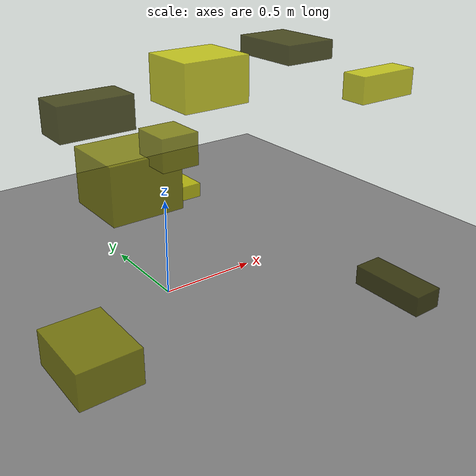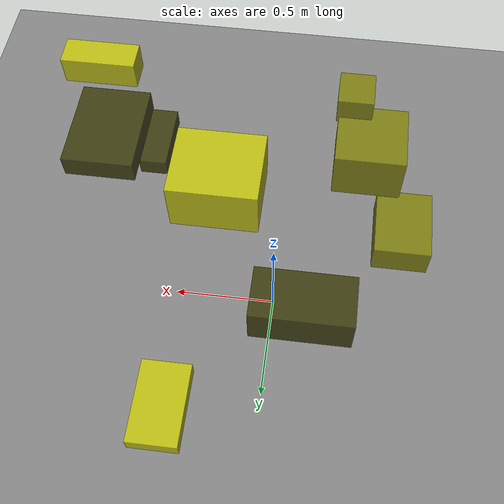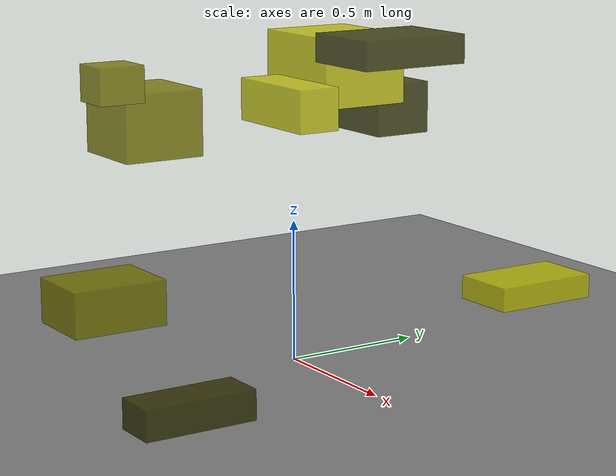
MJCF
<?xml version="1.0"?>
<mujoco model="obstacle_scene">
  <compiler angle="radian" coordinate="local"/>
  <option timestep="0.001" gravity="0 0 -9.81"/>

  <asset>
    <material name="obstacle_mat" rgba="0.8 0.8 0.0 0.8"/>
    <material name="ground_mat" rgba="0.5 0.5 0.5 1"/>
  </asset>

  <worldbody>
    <!-- Ground plane -->
    <geom name="ground" type="plane" size="3 3 0.1" material="ground_mat"/>

    <!-- Obstacles -->
    <body name="obstacle_0" pos="-0.160301 0.432710 0.860217">
      <geom name="obs_0" type="box" size="0.203128 0.106449 0.091178" rgba="0.2 0.2 0.0 0.8"/>
    </body>
    <body name="obstacle_1" pos="-0.294761 -0.540416 0.987117">
      <geom name="obs_1" type="box" size="0.076368 0.083011 0.064338" rgba="0.5 0.5 0.0 0.8"/>
    </body>
    <body name="obstacle_2" pos="0.423914 0.694198 0.259956">
      <geom name="obs_2" type="box" size="0.115965 0.190945 0.041340" rgba="0.8 0.8 0.0 0.8"/>
    </body>
    <body name="obstacle_3" pos="0.666277 -0.077078 1.174127">
      <geom name="obs_3" type="box" size="0.136251 0.182495 0.045082" rgba="0.2 0.2 0.0 0.8"/>
    </body>
    <body name="obstacle_4" pos="-0.628510 -0.427824 0.133180">
      <geom name="obs_4" type="box" size="0.142965 0.183978 0.085787" rgba="0.5 0.5 0.0 0.8"/>
    </body>
    <body name="obstacle_5" pos="0.222961 0.019657 1.064622">
      <geom name="obs_5" type="box" size="0.176713 0.152322 0.114045" rgba="0.8 0.8 0.0 0.8"/>
    </body>
    <body name="obstacle_6" pos="0.733674 -0.832540 0.172920">
      <geom name="obs_6" type="box" size="0.072839 0.183165 0.047924" rgba="0.2 0.2 0.0 0.8"/>
    </body>
    <body name="obstacle_7" pos="-0.380055 -0.376263 0.833218">
      <geom name="obs_7" type="box" size="0.150740 0.148242 0.117923" rgba="0.5 0.5 0.0 0.8"/>
    </body>
    <body name="obstacle_8" pos="0.822497 -0.543274 1.061536">
      <geom name="obs_8" type="box" size="0.159143 0.063607 0.061954" rgba="0.8 0.8 0.0 0.8"/>
    </body>
  </worldbody>
</mujoco>
